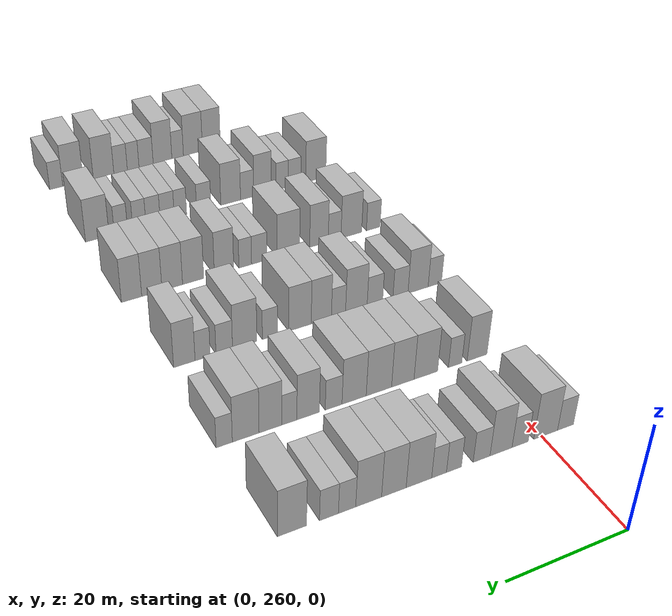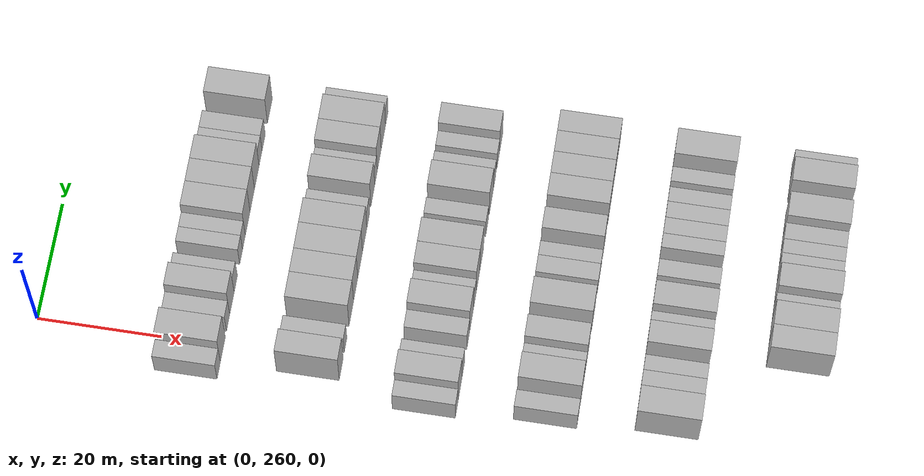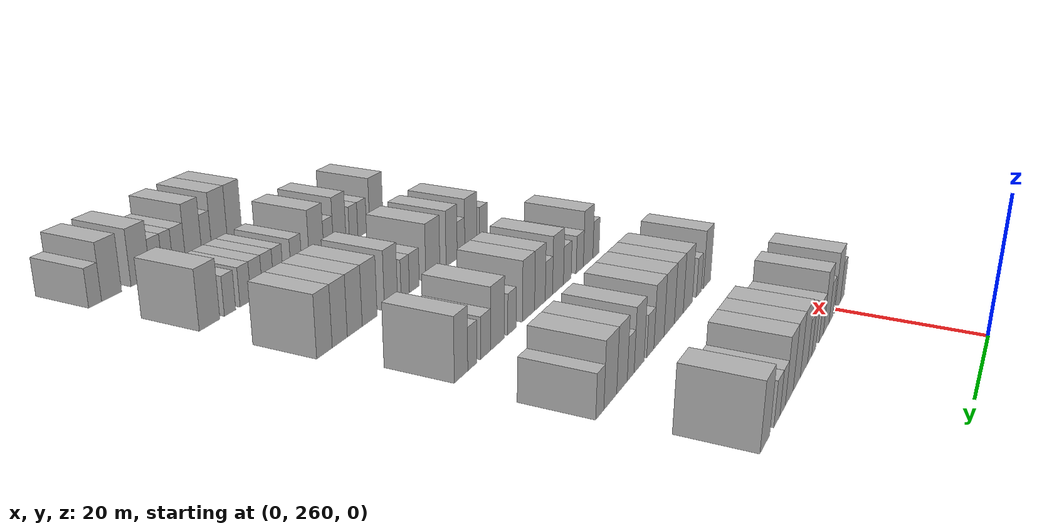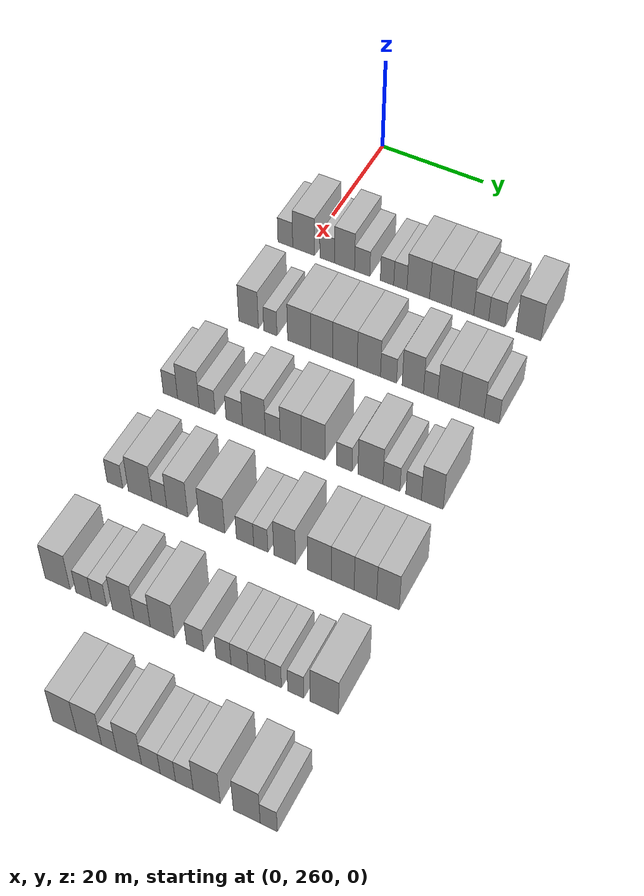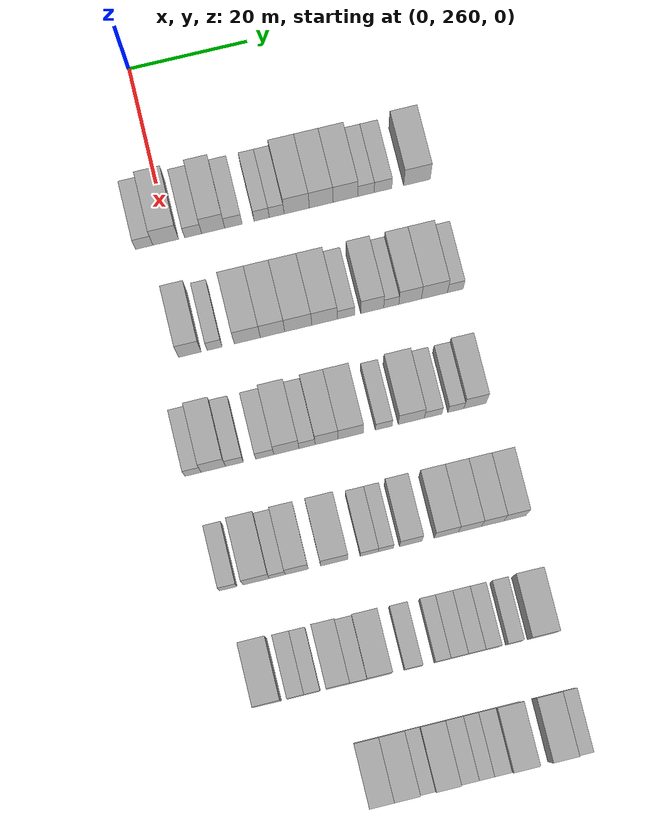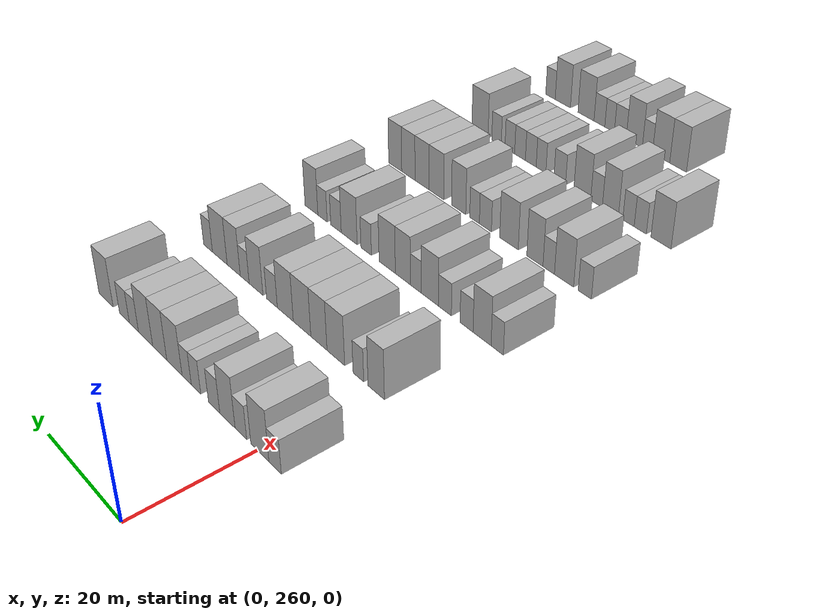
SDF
<sdf version="1.6">
 <world name="default">
  <model name="building_152">
   <static>1</static>
   <pose>25.0000 255.7451 0 0.000000 0.000000 0.000000</pose>
   <link name="link">
    <pose>0 0 3.00 0 0 0</pose>
    <collision name="collision"><geometry><box><size>10.0000 2.8878 6.0000</size></box></geometry></collision>
    <visual name="visual">
     <cast_shadows>0</cast_shadows>
     <geometry><box><size>10.0000 2.8878 6.0000</size></box></geometry>
     <material>
      <script>
       <uri>model://HANNAS_wall/materials/scripts</uri>
       <uri>model://HANNAS_wall/materials/textures</uri>
       <name>vrc/HANNAS_wall</name>
      </script>
     </material>
    </visual>
   </link>
  </model>
  <model name="building_153">
   <static>1</static>
   <pose>25.0000 259.3268 0 0.000000 0.000000 0.000000</pose>
   <link name="link">
    <pose>0 0 4.50 0 0 0</pose>
    <collision name="collision"><geometry><box><size>10.0000 4.2757 9.0000</size></box></geometry></collision>
    <visual name="visual">
     <cast_shadows>0</cast_shadows>
     <geometry><box><size>10.0000 4.2757 9.0000</size></box></geometry>
     <material>
      <script>
       <uri>model://HANNAS_wall/materials/scripts</uri>
       <uri>model://HANNAS_wall/materials/textures</uri>
       <name>vrc/HANNAS_wall</name>
      </script>
     </material>
    </visual>
   </link>
  </model>
  <model name="building_154">
   <static>1</static>
   <pose>25.0000 263.8897 0 0.000000 0.000000 0.000000</pose>
   <link name="link">
    <pose>0 0 3.00 0 0 0</pose>
    <collision name="collision"><geometry><box><size>10.0000 2.8500 6.0000</size></box></geometry></collision>
    <visual name="visual">
     <cast_shadows>0</cast_shadows>
     <geometry><box><size>10.0000 2.8500 6.0000</size></box></geometry>
     <material>
      <script>
       <uri>model://HANNAS_wall/materials/scripts</uri>
       <uri>model://HANNAS_wall/materials/textures</uri>
       <name>vrc/HANNAS_wall</name>
      </script>
     </material>
    </visual>
   </link>
  </model>
  <model name="building_155">
   <static>1</static>
   <pose>25.0000 267.2361 0 0.000000 0.000000 0.000000</pose>
   <link name="link">
    <pose>0 0 4.50 0 0 0</pose>
    <collision name="collision"><geometry><box><size>10.0000 3.8429 9.0000</size></box></geometry></collision>
    <visual name="visual">
     <cast_shadows>0</cast_shadows>
     <geometry><box><size>10.0000 3.8429 9.0000</size></box></geometry>
     <material>
      <script>
       <uri>model://HANNAS_wall/materials/scripts</uri>
       <uri>model://HANNAS_wall/materials/textures</uri>
       <name>vrc/HANNAS_wall</name>
      </script>
     </material>
    </visual>
   </link>
  </model>
  <model name="building_156">
   <static>1</static>
   <pose>25.0000 270.6099 0 0.000000 0.000000 0.000000</pose>
   <link name="link">
    <pose>0 0 3.00 0 0 0</pose>
    <collision name="collision"><geometry><box><size>10.0000 2.9047 6.0000</size></box></geometry></collision>
    <visual name="visual">
     <cast_shadows>0</cast_shadows>
     <geometry><box><size>10.0000 2.9047 6.0000</size></box></geometry>
     <material>
      <script>
       <uri>model://HANNAS_wall/materials/scripts</uri>
       <uri>model://HANNAS_wall/materials/textures</uri>
       <name>vrc/HANNAS_wall</name>
      </script>
     </material>
    </visual>
   </link>
  </model>
  <model name="building_157">
   <static>1</static>
   <pose>25.0000 275.3242 0 0.000000 0.000000 0.000000</pose>
   <link name="link">
    <pose>0 0 3.00 0 0 0</pose>
    <collision name="collision"><geometry><box><size>10.0000 2.5238 6.0000</size></box></geometry></collision>
    <visual name="visual">
     <cast_shadows>0</cast_shadows>
     <geometry><box><size>10.0000 2.5238 6.0000</size></box></geometry>
     <material>
      <script>
       <uri>model://HANNAS_wall/materials/scripts</uri>
       <uri>model://HANNAS_wall/materials/textures</uri>
       <name>vrc/HANNAS_wall</name>
      </script>
     </material>
    </visual>
   </link>
  </model>
  <model name="building_158">
   <static>1</static>
   <pose>25.0000 277.8251 0 0.000000 0.000000 0.000000</pose>
   <link name="link">
    <pose>0 0 3.00 0 0 0</pose>
    <collision name="collision"><geometry><box><size>10.0000 2.4781 6.0000</size></box></geometry></collision>
    <visual name="visual">
     <cast_shadows>0</cast_shadows>
     <geometry><box><size>10.0000 2.4781 6.0000</size></box></geometry>
     <material>
      <script>
       <uri>model://HANNAS_wall/materials/scripts</uri>
       <uri>model://HANNAS_wall/materials/textures</uri>
       <name>vrc/HANNAS_wall</name>
      </script>
     </material>
    </visual>
   </link>
  </model>
  <model name="building_159">
   <static>1</static>
   <pose>25.0000 281.1731 0 0.000000 0.000000 0.000000</pose>
   <link name="link">
    <pose>0 0 4.50 0 0 0</pose>
    <collision name="collision"><geometry><box><size>10.0000 4.2178 9.0000</size></box></geometry></collision>
    <visual name="visual">
     <cast_shadows>0</cast_shadows>
     <geometry><box><size>10.0000 4.2178 9.0000</size></box></geometry>
     <material>
      <script>
       <uri>model://HANNAS_wall/materials/scripts</uri>
       <uri>model://HANNAS_wall/materials/textures</uri>
       <name>vrc/HANNAS_wall</name>
      </script>
     </material>
    </visual>
   </link>
  </model>
  <model name="building_160">
   <static>1</static>
   <pose>25.0000 285.2769 0 0.000000 0.000000 0.000000</pose>
   <link name="link">
    <pose>0 0 4.50 0 0 0</pose>
    <collision name="collision"><geometry><box><size>10.0000 3.9897 9.0000</size></box></geometry></collision>
    <visual name="visual">
     <cast_shadows>0</cast_shadows>
     <geometry><box><size>10.0000 3.9897 9.0000</size></box></geometry>
     <material>
      <script>
       <uri>model://HANNAS_wall/materials/scripts</uri>
       <uri>model://HANNAS_wall/materials/textures</uri>
       <name>vrc/HANNAS_wall</name>
      </script>
     </material>
    </visual>
   </link>
  </model>
  <model name="building_161">
   <static>1</static>
   <pose>25.0000 289.3424 0 0.000000 0.000000 0.000000</pose>
   <link name="link">
    <pose>0 0 4.50 0 0 0</pose>
    <collision name="collision"><geometry><box><size>10.0000 4.1413 9.0000</size></box></geometry></collision>
    <visual name="visual">
     <cast_shadows>0</cast_shadows>
     <geometry><box><size>10.0000 4.1413 9.0000</size></box></geometry>
     <material>
      <script>
       <uri>model://HANNAS_wall/materials/scripts</uri>
       <uri>model://HANNAS_wall/materials/textures</uri>
       <name>vrc/HANNAS_wall</name>
      </script>
     </material>
    </visual>
   </link>
  </model>
  <model name="building_162">
   <static>1</static>
   <pose>25.0000 292.7761 0 0.000000 0.000000 0.000000</pose>
   <link name="link">
    <pose>0 0 3.00 0 0 0</pose>
    <collision name="collision"><geometry><box><size>10.0000 2.7262 6.0000</size></box></geometry></collision>
    <visual name="visual">
     <cast_shadows>0</cast_shadows>
     <geometry><box><size>10.0000 2.7262 6.0000</size></box></geometry>
     <material>
      <script>
       <uri>model://HANNAS_wall/materials/scripts</uri>
       <uri>model://HANNAS_wall/materials/textures</uri>
       <name>vrc/HANNAS_wall</name>
      </script>
     </material>
    </visual>
   </link>
  </model>
  <model name="building_163">
   <static>1</static>
   <pose>25.0000 295.6157 0 0.000000 0.000000 0.000000</pose>
   <link name="link">
    <pose>0 0 3.00 0 0 0</pose>
    <collision name="collision"><geometry><box><size>10.0000 2.9530 6.0000</size></box></geometry></collision>
    <visual name="visual">
     <cast_shadows>0</cast_shadows>
     <geometry><box><size>10.0000 2.9530 6.0000</size></box></geometry>
     <material>
      <script>
       <uri>model://HANNAS_wall/materials/scripts</uri>
       <uri>model://HANNAS_wall/materials/textures</uri>
       <name>vrc/HANNAS_wall</name>
      </script>
     </material>
    </visual>
   </link>
  </model>
  <model name="building_164">
   <static>1</static>
   <pose>25.0000 301.3169 0 0.000000 0.000000 0.000000</pose>
   <link name="link">
    <pose>0 0 4.50 0 0 0</pose>
    <collision name="collision"><geometry><box><size>10.0000 4.4494 9.0000</size></box></geometry></collision>
    <visual name="visual">
     <cast_shadows>0</cast_shadows>
     <geometry><box><size>10.0000 4.4494 9.0000</size></box></geometry>
     <material>
      <script>
       <uri>model://HANNAS_wall/materials/scripts</uri>
       <uri>model://HANNAS_wall/materials/textures</uri>
       <name>vrc/HANNAS_wall</name>
      </script>
     </material>
    </visual>
   </link>
  </model>
  <model name="building_318">
   <static>1</static>
   <pose>44.0000 258.9433 0 0.000000 0.000000 0.000000</pose>
   <link name="link">
    <pose>0 0 4.50 0 0 0</pose>
    <collision name="collision"><geometry><box><size>10.0000 3.7302 9.0000</size></box></geometry></collision>
    <visual name="visual">
     <cast_shadows>0</cast_shadows>
     <geometry><box><size>10.0000 3.7302 9.0000</size></box></geometry>
     <material>
      <script>
       <uri>model://HANNAS_wall/materials/scripts</uri>
       <uri>model://HANNAS_wall/materials/textures</uri>
       <name>vrc/HANNAS_wall</name>
      </script>
     </material>
    </visual>
   </link>
  </model>
  <model name="building_319">
   <static>1</static>
   <pose>44.0000 263.0475 0 0.000000 0.000000 0.000000</pose>
   <link name="link">
    <pose>0 0 3.00 0 0 0</pose>
    <collision name="collision"><geometry><box><size>10.0000 2.4783 6.0000</size></box></geometry></collision>
    <visual name="visual">
     <cast_shadows>0</cast_shadows>
     <geometry><box><size>10.0000 2.4783 6.0000</size></box></geometry>
     <material>
      <script>
       <uri>model://HANNAS_wall/materials/scripts</uri>
       <uri>model://HANNAS_wall/materials/textures</uri>
       <name>vrc/HANNAS_wall</name>
      </script>
     </material>
    </visual>
   </link>
  </model>
  <model name="building_320">
   <static>1</static>
   <pose>44.0000 268.4353 0 0.000000 0.000000 0.000000</pose>
   <link name="link">
    <pose>0 0 4.50 0 0 0</pose>
    <collision name="collision"><geometry><box><size>10.0000 4.2972 9.0000</size></box></geometry></collision>
    <visual name="visual">
     <cast_shadows>0</cast_shadows>
     <geometry><box><size>10.0000 4.2972 9.0000</size></box></geometry>
     <material>
      <script>
       <uri>model://HANNAS_wall/materials/scripts</uri>
       <uri>model://HANNAS_wall/materials/textures</uri>
       <name>vrc/HANNAS_wall</name>
      </script>
     </material>
    </visual>
   </link>
  </model>
  <model name="building_321">
   <static>1</static>
   <pose>44.0000 272.5977 0 0.000000 0.000000 0.000000</pose>
   <link name="link">
    <pose>0 0 4.50 0 0 0</pose>
    <collision name="collision"><geometry><box><size>10.0000 4.0278 9.0000</size></box></geometry></collision>
    <visual name="visual">
     <cast_shadows>0</cast_shadows>
     <geometry><box><size>10.0000 4.0278 9.0000</size></box></geometry>
     <material>
      <script>
       <uri>model://HANNAS_wall/materials/scripts</uri>
       <uri>model://HANNAS_wall/materials/textures</uri>
       <name>vrc/HANNAS_wall</name>
      </script>
     </material>
    </visual>
   </link>
  </model>
  <model name="building_322">
   <static>1</static>
   <pose>44.0000 276.8564 0 0.000000 0.000000 0.000000</pose>
   <link name="link">
    <pose>0 0 4.50 0 0 0</pose>
    <collision name="collision"><geometry><box><size>10.0000 4.4895 9.0000</size></box></geometry></collision>
    <visual name="visual">
     <cast_shadows>0</cast_shadows>
     <geometry><box><size>10.0000 4.4895 9.0000</size></box></geometry>
     <material>
      <script>
       <uri>model://HANNAS_wall/materials/scripts</uri>
       <uri>model://HANNAS_wall/materials/textures</uri>
       <name>vrc/HANNAS_wall</name>
      </script>
     </material>
    </visual>
   </link>
  </model>
  <model name="building_323">
   <static>1</static>
   <pose>44.0000 281.2097 0 0.000000 0.000000 0.000000</pose>
   <link name="link">
    <pose>0 0 4.50 0 0 0</pose>
    <collision name="collision"><geometry><box><size>10.0000 4.2170 9.0000</size></box></geometry></collision>
    <visual name="visual">
     <cast_shadows>0</cast_shadows>
     <geometry><box><size>10.0000 4.2170 9.0000</size></box></geometry>
     <material>
      <script>
       <uri>model://HANNAS_wall/materials/scripts</uri>
       <uri>model://HANNAS_wall/materials/textures</uri>
       <name>vrc/HANNAS_wall</name>
      </script>
     </material>
    </visual>
   </link>
  </model>
  <model name="building_324">
   <static>1</static>
   <pose>44.0000 284.7604 0 0.000000 0.000000 0.000000</pose>
   <link name="link">
    <pose>0 0 3.00 0 0 0</pose>
    <collision name="collision"><geometry><box><size>10.0000 2.8845 6.0000</size></box></geometry></collision>
    <visual name="visual">
     <cast_shadows>0</cast_shadows>
     <geometry><box><size>10.0000 2.8845 6.0000</size></box></geometry>
     <material>
      <script>
       <uri>model://HANNAS_wall/materials/scripts</uri>
       <uri>model://HANNAS_wall/materials/textures</uri>
       <name>vrc/HANNAS_wall</name>
      </script>
     </material>
    </visual>
   </link>
  </model>
  <model name="building_325">
   <static>1</static>
   <pose>44.0000 289.1081 0 0.000000 0.000000 0.000000</pose>
   <link name="link">
    <pose>0 0 4.50 0 0 0</pose>
    <collision name="collision"><geometry><box><size>10.0000 3.8110 9.0000</size></box></geometry></collision>
    <visual name="visual">
     <cast_shadows>0</cast_shadows>
     <geometry><box><size>10.0000 3.8110 9.0000</size></box></geometry>
     <material>
      <script>
       <uri>model://HANNAS_wall/materials/scripts</uri>
       <uri>model://HANNAS_wall/materials/textures</uri>
       <name>vrc/HANNAS_wall</name>
      </script>
     </material>
    </visual>
   </link>
  </model>
  <model name="building_326">
   <static>1</static>
   <pose>44.0000 292.2717 0 0.000000 0.000000 0.000000</pose>
   <link name="link">
    <pose>0 0 3.00 0 0 0</pose>
    <collision name="collision"><geometry><box><size>10.0000 2.5161 6.0000</size></box></geometry></collision>
    <visual name="visual">
     <cast_shadows>0</cast_shadows>
     <geometry><box><size>10.0000 2.5161 6.0000</size></box></geometry>
     <material>
      <script>
       <uri>model://HANNAS_wall/materials/scripts</uri>
       <uri>model://HANNAS_wall/materials/textures</uri>
       <name>vrc/HANNAS_wall</name>
      </script>
     </material>
    </visual>
   </link>
  </model>
  <model name="building_327">
   <static>1</static>
   <pose>44.0000 295.4068 0 0.000000 0.000000 0.000000</pose>
   <link name="link">
    <pose>0 0 4.50 0 0 0</pose>
    <collision name="collision"><geometry><box><size>10.0000 3.7540 9.0000</size></box></geometry></collision>
    <visual name="visual">
     <cast_shadows>0</cast_shadows>
     <geometry><box><size>10.0000 3.7540 9.0000</size></box></geometry>
     <material>
      <script>
       <uri>model://HANNAS_wall/materials/scripts</uri>
       <uri>model://HANNAS_wall/materials/textures</uri>
       <name>vrc/HANNAS_wall</name>
      </script>
     </material>
    </visual>
   </link>
  </model>
  <model name="building_328">
   <static>1</static>
   <pose>44.0000 299.4549 0 0.000000 0.000000 0.000000</pose>
   <link name="link">
    <pose>0 0 4.50 0 0 0</pose>
    <collision name="collision"><geometry><box><size>10.0000 4.3423 9.0000</size></box></geometry></collision>
    <visual name="visual">
     <cast_shadows>0</cast_shadows>
     <geometry><box><size>10.0000 4.3423 9.0000</size></box></geometry>
     <material>
      <script>
       <uri>model://HANNAS_wall/materials/scripts</uri>
       <uri>model://HANNAS_wall/materials/textures</uri>
       <name>vrc/HANNAS_wall</name>
      </script>
     </material>
    </visual>
   </link>
  </model>
  <model name="building_329">
   <static>1</static>
   <pose>44.0000 302.9361 0 0.000000 0.000000 0.000000</pose>
   <link name="link">
    <pose>0 0 3.00 0 0 0</pose>
    <collision name="collision"><geometry><box><size>10.0000 2.6201 6.0000</size></box></geometry></collision>
    <visual name="visual">
     <cast_shadows>0</cast_shadows>
     <geometry><box><size>10.0000 2.6201 6.0000</size></box></geometry>
     <material>
      <script>
       <uri>model://HANNAS_wall/materials/scripts</uri>
       <uri>model://HANNAS_wall/materials/textures</uri>
       <name>vrc/HANNAS_wall</name>
      </script>
     </material>
    </visual>
   </link>
  </model>
  <model name="building_484">
   <static>1</static>
   <pose>63.0000 255.0630 0 0.000000 0.000000 0.000000</pose>
   <link name="link">
    <pose>0 0 3.00 0 0 0</pose>
    <collision name="collision"><geometry><box><size>10.0000 2.6639 6.0000</size></box></geometry></collision>
    <visual name="visual">
     <cast_shadows>0</cast_shadows>
     <geometry><box><size>10.0000 2.6639 6.0000</size></box></geometry>
     <material>
      <script>
       <uri>model://HANNAS_wall/materials/scripts</uri>
       <uri>model://HANNAS_wall/materials/textures</uri>
       <name>vrc/HANNAS_wall</name>
      </script>
     </material>
    </visual>
   </link>
  </model>
  <model name="building_485">
   <static>1</static>
   <pose>63.0000 258.3875 0 0.000000 0.000000 0.000000</pose>
   <link name="link">
    <pose>0 0 4.50 0 0 0</pose>
    <collision name="collision"><geometry><box><size>10.0000 3.9850 9.0000</size></box></geometry></collision>
    <visual name="visual">
     <cast_shadows>0</cast_shadows>
     <geometry><box><size>10.0000 3.9850 9.0000</size></box></geometry>
     <material>
      <script>
       <uri>model://HANNAS_wall/materials/scripts</uri>
       <uri>model://HANNAS_wall/materials/textures</uri>
       <name>vrc/HANNAS_wall</name>
      </script>
     </material>
    </visual>
   </link>
  </model>
  <model name="building_486">
   <static>1</static>
   <pose>63.0000 261.8456 0 0.000000 0.000000 0.000000</pose>
   <link name="link">
    <pose>0 0 3.00 0 0 0</pose>
    <collision name="collision"><geometry><box><size>10.0000 2.9313 6.0000</size></box></geometry></collision>
    <visual name="visual">
     <cast_shadows>0</cast_shadows>
     <geometry><box><size>10.0000 2.9313 6.0000</size></box></geometry>
     <material>
      <script>
       <uri>model://HANNAS_wall/materials/scripts</uri>
       <uri>model://HANNAS_wall/materials/textures</uri>
       <name>vrc/HANNAS_wall</name>
      </script>
     </material>
    </visual>
   </link>
  </model>
  <model name="building_487">
   <static>1</static>
   <pose>63.0000 266.8086 0 0.000000 0.000000 0.000000</pose>
   <link name="link">
    <pose>0 0 3.00 0 0 0</pose>
    <collision name="collision"><geometry><box><size>10.0000 2.9948 6.0000</size></box></geometry></collision>
    <visual name="visual">
     <cast_shadows>0</cast_shadows>
     <geometry><box><size>10.0000 2.9948 6.0000</size></box></geometry>
     <material>
      <script>
       <uri>model://HANNAS_wall/materials/scripts</uri>
       <uri>model://HANNAS_wall/materials/textures</uri>
       <name>vrc/HANNAS_wall</name>
      </script>
     </material>
    </visual>
   </link>
  </model>
  <model name="building_488">
   <static>1</static>
   <pose>63.0000 270.3544 0 0.000000 0.000000 0.000000</pose>
   <link name="link">
    <pose>0 0 4.50 0 0 0</pose>
    <collision name="collision"><geometry><box><size>10.0000 4.0968 9.0000</size></box></geometry></collision>
    <visual name="visual">
     <cast_shadows>0</cast_shadows>
     <geometry><box><size>10.0000 4.0968 9.0000</size></box></geometry>
     <material>
      <script>
       <uri>model://HANNAS_wall/materials/scripts</uri>
       <uri>model://HANNAS_wall/materials/textures</uri>
       <name>vrc/HANNAS_wall</name>
      </script>
     </material>
    </visual>
   </link>
  </model>
  <model name="building_489">
   <static>1</static>
   <pose>63.0000 273.7307 0 0.000000 0.000000 0.000000</pose>
   <link name="link">
    <pose>0 0 3.00 0 0 0</pose>
    <collision name="collision"><geometry><box><size>10.0000 2.6557 6.0000</size></box></geometry></collision>
    <visual name="visual">
     <cast_shadows>0</cast_shadows>
     <geometry><box><size>10.0000 2.6557 6.0000</size></box></geometry>
     <material>
      <script>
       <uri>model://HANNAS_wall/materials/scripts</uri>
       <uri>model://HANNAS_wall/materials/textures</uri>
       <name>vrc/HANNAS_wall</name>
      </script>
     </material>
    </visual>
   </link>
  </model>
  <model name="building_490">
   <static>1</static>
   <pose>63.0000 276.9343 0 0.000000 0.000000 0.000000</pose>
   <link name="link">
    <pose>0 0 4.50 0 0 0</pose>
    <collision name="collision"><geometry><box><size>10.0000 3.7516 9.0000</size></box></geometry></collision>
    <visual name="visual">
     <cast_shadows>0</cast_shadows>
     <geometry><box><size>10.0000 3.7516 9.0000</size></box></geometry>
     <material>
      <script>
       <uri>model://HANNAS_wall/materials/scripts</uri>
       <uri>model://HANNAS_wall/materials/textures</uri>
       <name>vrc/HANNAS_wall</name>
      </script>
     </material>
    </visual>
   </link>
  </model>
  <model name="building_491">
   <static>1</static>
   <pose>63.0000 280.8736 0 0.000000 0.000000 0.000000</pose>
   <link name="link">
    <pose>0 0 4.50 0 0 0</pose>
    <collision name="collision"><geometry><box><size>10.0000 4.1269 9.0000</size></box></geometry></collision>
    <visual name="visual">
     <cast_shadows>0</cast_shadows>
     <geometry><box><size>10.0000 4.1269 9.0000</size></box></geometry>
     <material>
      <script>
       <uri>model://HANNAS_wall/materials/scripts</uri>
       <uri>model://HANNAS_wall/materials/textures</uri>
       <name>vrc/HANNAS_wall</name>
      </script>
     </material>
    </visual>
   </link>
  </model>
  <model name="building_492">
   <static>1</static>
   <pose>63.0000 286.3116 0 0.000000 0.000000 0.000000</pose>
   <link name="link">
    <pose>0 0 3.00 0 0 0</pose>
    <collision name="collision"><geometry><box><size>10.0000 2.7492 6.0000</size></box></geometry></collision>
    <visual name="visual">
     <cast_shadows>0</cast_shadows>
     <geometry><box><size>10.0000 2.7492 6.0000</size></box></geometry>
     <material>
      <script>
       <uri>model://HANNAS_wall/materials/scripts</uri>
       <uri>model://HANNAS_wall/materials/textures</uri>
       <name>vrc/HANNAS_wall</name>
      </script>
     </material>
    </visual>
   </link>
  </model>
  <model name="building_493">
   <static>1</static>
   <pose>63.0000 290.8353 0 0.000000 0.000000 0.000000</pose>
   <link name="link">
    <pose>0 0 4.50 0 0 0</pose>
    <collision name="collision"><geometry><box><size>10.0000 4.2982 9.0000</size></box></geometry></collision>
    <visual name="visual">
     <cast_shadows>0</cast_shadows>
     <geometry><box><size>10.0000 4.2982 9.0000</size></box></geometry>
     <material>
      <script>
       <uri>model://HANNAS_wall/materials/scripts</uri>
       <uri>model://HANNAS_wall/materials/textures</uri>
       <name>vrc/HANNAS_wall</name>
      </script>
     </material>
    </visual>
   </link>
  </model>
  <model name="building_494">
   <static>1</static>
   <pose>63.0000 294.4322 0 0.000000 0.000000 0.000000</pose>
   <link name="link">
    <pose>0 0 3.00 0 0 0</pose>
    <collision name="collision"><geometry><box><size>10.0000 2.8955 6.0000</size></box></geometry></collision>
    <visual name="visual">
     <cast_shadows>0</cast_shadows>
     <geometry><box><size>10.0000 2.8955 6.0000</size></box></geometry>
     <material>
      <script>
       <uri>model://HANNAS_wall/materials/scripts</uri>
       <uri>model://HANNAS_wall/materials/textures</uri>
       <name>vrc/HANNAS_wall</name>
      </script>
     </material>
    </visual>
   </link>
  </model>
  <model name="building_495">
   <static>1</static>
   <pose>63.0000 298.1858 0 0.000000 0.000000 0.000000</pose>
   <link name="link">
    <pose>0 0 3.00 0 0 0</pose>
    <collision name="collision"><geometry><box><size>10.0000 2.6119 6.0000</size></box></geometry></collision>
    <visual name="visual">
     <cast_shadows>0</cast_shadows>
     <geometry><box><size>10.0000 2.6119 6.0000</size></box></geometry>
     <material>
      <script>
       <uri>model://HANNAS_wall/materials/scripts</uri>
       <uri>model://HANNAS_wall/materials/textures</uri>
       <name>vrc/HANNAS_wall</name>
      </script>
     </material>
    </visual>
   </link>
  </model>
  <model name="building_496">
   <static>1</static>
   <pose>63.0000 301.3252 0 0.000000 0.000000 0.000000</pose>
   <link name="link">
    <pose>0 0 4.50 0 0 0</pose>
    <collision name="collision"><geometry><box><size>10.0000 3.6667 9.0000</size></box></geometry></collision>
    <visual name="visual">
     <cast_shadows>0</cast_shadows>
     <geometry><box><size>10.0000 3.6667 9.0000</size></box></geometry>
     <material>
      <script>
       <uri>model://HANNAS_wall/materials/scripts</uri>
       <uri>model://HANNAS_wall/materials/textures</uri>
       <name>vrc/HANNAS_wall</name>
      </script>
     </material>
    </visual>
   </link>
  </model>
  <model name="building_652">
   <static>1</static>
   <pose>82.0000 256.3721 0 0.000000 0.000000 0.000000</pose>
   <link name="link">
    <pose>0 0 3.00 0 0 0</pose>
    <collision name="collision"><geometry><box><size>10.0000 2.8302 6.0000</size></box></geometry></collision>
    <visual name="visual">
     <cast_shadows>0</cast_shadows>
     <geometry><box><size>10.0000 2.8302 6.0000</size></box></geometry>
     <material>
      <script>
       <uri>model://HANNAS_wall/materials/scripts</uri>
       <uri>model://HANNAS_wall/materials/textures</uri>
       <name>vrc/HANNAS_wall</name>
      </script>
     </material>
    </visual>
   </link>
  </model>
  <model name="building_653">
   <static>1</static>
   <pose>82.0000 260.9050 0 0.000000 0.000000 0.000000</pose>
   <link name="link">
    <pose>0 0 4.50 0 0 0</pose>
    <collision name="collision"><geometry><box><size>10.0000 4.2356 9.0000</size></box></geometry></collision>
    <visual name="visual">
     <cast_shadows>0</cast_shadows>
     <geometry><box><size>10.0000 4.2356 9.0000</size></box></geometry>
     <material>
      <script>
       <uri>model://HANNAS_wall/materials/scripts</uri>
       <uri>model://HANNAS_wall/materials/textures</uri>
       <name>vrc/HANNAS_wall</name>
      </script>
     </material>
    </visual>
   </link>
  </model>
  <model name="building_654">
   <static>1</static>
   <pose>82.0000 264.3204 0 0.000000 0.000000 0.000000</pose>
   <link name="link">
    <pose>0 0 3.00 0 0 0</pose>
    <collision name="collision"><geometry><box><size>10.0000 2.5952 6.0000</size></box></geometry></collision>
    <visual name="visual">
     <cast_shadows>0</cast_shadows>
     <geometry><box><size>10.0000 2.5952 6.0000</size></box></geometry>
     <material>
      <script>
       <uri>model://HANNAS_wall/materials/scripts</uri>
       <uri>model://HANNAS_wall/materials/textures</uri>
       <name>vrc/HANNAS_wall</name>
      </script>
     </material>
    </visual>
   </link>
  </model>
  <model name="building_655">
   <static>1</static>
   <pose>82.0000 267.4763 0 0.000000 0.000000 0.000000</pose>
   <link name="link">
    <pose>0 0 4.50 0 0 0</pose>
    <collision name="collision"><geometry><box><size>10.0000 3.7165 9.0000</size></box></geometry></collision>
    <visual name="visual">
     <cast_shadows>0</cast_shadows>
     <geometry><box><size>10.0000 3.7165 9.0000</size></box></geometry>
     <material>
      <script>
       <uri>model://HANNAS_wall/materials/scripts</uri>
       <uri>model://HANNAS_wall/materials/textures</uri>
       <name>vrc/HANNAS_wall</name>
      </script>
     </material>
    </visual>
   </link>
  </model>
  <model name="building_656">
   <static>1</static>
   <pose>82.0000 273.5510 0 0.000000 0.000000 0.000000</pose>
   <link name="link">
    <pose>0 0 4.50 0 0 0</pose>
    <collision name="collision"><geometry><box><size>10.0000 4.4329 9.0000</size></box></geometry></collision>
    <visual name="visual">
     <cast_shadows>0</cast_shadows>
     <geometry><box><size>10.0000 4.4329 9.0000</size></box></geometry>
     <material>
      <script>
       <uri>model://HANNAS_wall/materials/scripts</uri>
       <uri>model://HANNAS_wall/materials/textures</uri>
       <name>vrc/HANNAS_wall</name>
      </script>
     </material>
    </visual>
   </link>
  </model>
  <model name="building_657">
   <static>1</static>
   <pose>82.0000 279.2482 0 0.000000 0.000000 0.000000</pose>
   <link name="link">
    <pose>0 0 3.00 0 0 0</pose>
    <collision name="collision"><geometry><box><size>10.0000 2.9615 6.0000</size></box></geometry></collision>
    <visual name="visual">
     <cast_shadows>0</cast_shadows>
     <geometry><box><size>10.0000 2.9615 6.0000</size></box></geometry>
     <material>
      <script>
       <uri>model://HANNAS_wall/materials/scripts</uri>
       <uri>model://HANNAS_wall/materials/textures</uri>
       <name>vrc/HANNAS_wall</name>
      </script>
     </material>
    </visual>
   </link>
  </model>
  <model name="building_658">
   <static>1</static>
   <pose>82.0000 281.9366 0 0.000000 0.000000 0.000000</pose>
   <link name="link">
    <pose>0 0 3.00 0 0 0</pose>
    <collision name="collision"><geometry><box><size>10.0000 2.4153 6.0000</size></box></geometry></collision>
    <visual name="visual">
     <cast_shadows>0</cast_shadows>
     <geometry><box><size>10.0000 2.4153 6.0000</size></box></geometry>
     <material>
      <script>
       <uri>model://HANNAS_wall/materials/scripts</uri>
       <uri>model://HANNAS_wall/materials/textures</uri>
       <name>vrc/HANNAS_wall</name>
      </script>
     </material>
    </visual>
   </link>
  </model>
  <model name="building_659">
   <static>1</static>
   <pose>82.0000 285.9745 0 0.000000 0.000000 0.000000</pose>
   <link name="link">
    <pose>0 0 4.50 0 0 0</pose>
    <collision name="collision"><geometry><box><size>10.0000 3.6605 9.0000</size></box></geometry></collision>
    <visual name="visual">
     <cast_shadows>0</cast_shadows>
     <geometry><box><size>10.0000 3.6605 9.0000</size></box></geometry>
     <material>
      <script>
       <uri>model://HANNAS_wall/materials/scripts</uri>
       <uri>model://HANNAS_wall/materials/textures</uri>
       <name>vrc/HANNAS_wall</name>
      </script>
     </material>
    </visual>
   </link>
  </model>
  <model name="building_660">
   <static>1</static>
   <pose>82.0000 291.7693 0 0.000000 0.000000 0.000000</pose>
   <link name="link">
    <pose>0 0 4.50 0 0 0</pose>
    <collision name="collision"><geometry><box><size>10.0000 3.9292 9.0000</size></box></geometry></collision>
    <visual name="visual">
     <cast_shadows>0</cast_shadows>
     <geometry><box><size>10.0000 3.9292 9.0000</size></box></geometry>
     <material>
      <script>
       <uri>model://HANNAS_wall/materials/scripts</uri>
       <uri>model://HANNAS_wall/materials/textures</uri>
       <name>vrc/HANNAS_wall</name>
      </script>
     </material>
    </visual>
   </link>
  </model>
  <model name="building_661">
   <static>1</static>
   <pose>82.0000 295.6200 0 0.000000 0.000000 0.000000</pose>
   <link name="link">
    <pose>0 0 4.50 0 0 0</pose>
    <collision name="collision"><geometry><box><size>10.0000 3.7721 9.0000</size></box></geometry></collision>
    <visual name="visual">
     <cast_shadows>0</cast_shadows>
     <geometry><box><size>10.0000 3.7721 9.0000</size></box></geometry>
     <material>
      <script>
       <uri>model://HANNAS_wall/materials/scripts</uri>
       <uri>model://HANNAS_wall/materials/textures</uri>
       <name>vrc/HANNAS_wall</name>
      </script>
     </material>
    </visual>
   </link>
  </model>
  <model name="building_662">
   <static>1</static>
   <pose>82.0000 299.3448 0 0.000000 0.000000 0.000000</pose>
   <link name="link">
    <pose>0 0 4.50 0 0 0</pose>
    <collision name="collision"><geometry><box><size>10.0000 3.6774 9.0000</size></box></geometry></collision>
    <visual name="visual">
     <cast_shadows>0</cast_shadows>
     <geometry><box><size>10.0000 3.6774 9.0000</size></box></geometry>
     <material>
      <script>
       <uri>model://HANNAS_wall/materials/scripts</uri>
       <uri>model://HANNAS_wall/materials/textures</uri>
       <name>vrc/HANNAS_wall</name>
      </script>
     </material>
    </visual>
   </link>
  </model>
  <model name="building_663">
   <static>1</static>
   <pose>82.0000 303.0088 0 0.000000 0.000000 0.000000</pose>
   <link name="link">
    <pose>0 0 4.50 0 0 0</pose>
    <collision name="collision"><geometry><box><size>10.0000 3.6505 9.0000</size></box></geometry></collision>
    <visual name="visual">
     <cast_shadows>0</cast_shadows>
     <geometry><box><size>10.0000 3.6505 9.0000</size></box></geometry>
     <material>
      <script>
       <uri>model://HANNAS_wall/materials/scripts</uri>
       <uri>model://HANNAS_wall/materials/textures</uri>
       <name>vrc/HANNAS_wall</name>
      </script>
     </material>
    </visual>
   </link>
  </model>
  <model name="building_828">
   <static>1</static>
   <pose>101.0000 258.2680 0 0.000000 0.000000 0.000000</pose>
   <link name="link">
    <pose>0 0 4.50 0 0 0</pose>
    <collision name="collision"><geometry><box><size>10.0000 4.3297 9.0000</size></box></geometry></collision>
    <visual name="visual">
     <cast_shadows>0</cast_shadows>
     <geometry><box><size>10.0000 4.3297 9.0000</size></box></geometry>
     <material>
      <script>
       <uri>model://HANNAS_wall/materials/scripts</uri>
       <uri>model://HANNAS_wall/materials/textures</uri>
       <name>vrc/HANNAS_wall</name>
      </script>
     </material>
    </visual>
   </link>
  </model>
  <model name="building_829">
   <static>1</static>
   <pose>101.0000 262.7826 0 0.000000 0.000000 0.000000</pose>
   <link name="link">
    <pose>0 0 3.00 0 0 0</pose>
    <collision name="collision"><geometry><box><size>10.0000 2.6995 6.0000</size></box></geometry></collision>
    <visual name="visual">
     <cast_shadows>0</cast_shadows>
     <geometry><box><size>10.0000 2.6995 6.0000</size></box></geometry>
     <material>
      <script>
       <uri>model://HANNAS_wall/materials/scripts</uri>
       <uri>model://HANNAS_wall/materials/textures</uri>
       <name>vrc/HANNAS_wall</name>
      </script>
     </material>
    </visual>
   </link>
  </model>
  <model name="building_830">
   <static>1</static>
   <pose>101.0000 265.4132 0 0.000000 0.000000 0.000000</pose>
   <link name="link">
    <pose>0 0 3.00 0 0 0</pose>
    <collision name="collision"><geometry><box><size>10.0000 2.5617 6.0000</size></box></geometry></collision>
    <visual name="visual">
     <cast_shadows>0</cast_shadows>
     <geometry><box><size>10.0000 2.5617 6.0000</size></box></geometry>
     <material>
      <script>
       <uri>model://HANNAS_wall/materials/scripts</uri>
       <uri>model://HANNAS_wall/materials/textures</uri>
       <name>vrc/HANNAS_wall</name>
      </script>
     </material>
    </visual>
   </link>
  </model>
  <model name="building_831">
   <static>1</static>
   <pose>101.0000 269.5409 0 0.000000 0.000000 0.000000</pose>
   <link name="link">
    <pose>0 0 4.50 0 0 0</pose>
    <collision name="collision"><geometry><box><size>10.0000 3.6938 9.0000</size></box></geometry></collision>
    <visual name="visual">
     <cast_shadows>0</cast_shadows>
     <geometry><box><size>10.0000 3.6938 9.0000</size></box></geometry>
     <material>
      <script>
       <uri>model://HANNAS_wall/materials/scripts</uri>
       <uri>model://HANNAS_wall/materials/textures</uri>
       <name>vrc/HANNAS_wall</name>
      </script>
     </material>
    </visual>
   </link>
  </model>
  <model name="building_832">
   <static>1</static>
   <pose>101.0000 272.7527 0 0.000000 0.000000 0.000000</pose>
   <link name="link">
    <pose>0 0 3.00 0 0 0</pose>
    <collision name="collision"><geometry><box><size>10.0000 2.7297 6.0000</size></box></geometry></collision>
    <visual name="visual">
     <cast_shadows>0</cast_shadows>
     <geometry><box><size>10.0000 2.7297 6.0000</size></box></geometry>
     <material>
      <script>
       <uri>model://HANNAS_wall/materials/scripts</uri>
       <uri>model://HANNAS_wall/materials/textures</uri>
       <name>vrc/HANNAS_wall</name>
      </script>
     </material>
    </visual>
   </link>
  </model>
  <model name="building_833">
   <static>1</static>
   <pose>101.0000 276.1327 0 0.000000 0.000000 0.000000</pose>
   <link name="link">
    <pose>0 0 4.50 0 0 0</pose>
    <collision name="collision"><geometry><box><size>10.0000 4.0304 9.0000</size></box></geometry></collision>
    <visual name="visual">
     <cast_shadows>0</cast_shadows>
     <geometry><box><size>10.0000 4.0304 9.0000</size></box></geometry>
     <material>
      <script>
       <uri>model://HANNAS_wall/materials/scripts</uri>
       <uri>model://HANNAS_wall/materials/textures</uri>
       <name>vrc/HANNAS_wall</name>
      </script>
     </material>
    </visual>
   </link>
  </model>
  <model name="building_834">
   <static>1</static>
   <pose>101.0000 281.5826 0 0.000000 0.000000 0.000000</pose>
   <link name="link">
    <pose>0 0 3.00 0 0 0</pose>
    <collision name="collision"><geometry><box><size>10.0000 2.8695 6.0000</size></box></geometry></collision>
    <visual name="visual">
     <cast_shadows>0</cast_shadows>
     <geometry><box><size>10.0000 2.8695 6.0000</size></box></geometry>
     <material>
      <script>
       <uri>model://HANNAS_wall/materials/scripts</uri>
       <uri>model://HANNAS_wall/materials/textures</uri>
       <name>vrc/HANNAS_wall</name>
      </script>
     </material>
    </visual>
   </link>
  </model>
  <model name="building_835">
   <static>1</static>
   <pose>101.0000 286.2436 0 0.000000 0.000000 0.000000</pose>
   <link name="link">
    <pose>0 0 3.00 0 0 0</pose>
    <collision name="collision"><geometry><box><size>10.0000 2.4524 6.0000</size></box></geometry></collision>
    <visual name="visual">
     <cast_shadows>0</cast_shadows>
     <geometry><box><size>10.0000 2.4524 6.0000</size></box></geometry>
     <material>
      <script>
       <uri>model://HANNAS_wall/materials/scripts</uri>
       <uri>model://HANNAS_wall/materials/textures</uri>
       <name>vrc/HANNAS_wall</name>
      </script>
     </material>
    </visual>
   </link>
  </model>
  <model name="building_836">
   <static>1</static>
   <pose>101.0000 288.8552 0 0.000000 0.000000 0.000000</pose>
   <link name="link">
    <pose>0 0 3.00 0 0 0</pose>
    <collision name="collision"><geometry><box><size>10.0000 2.7709 6.0000</size></box></geometry></collision>
    <visual name="visual">
     <cast_shadows>0</cast_shadows>
     <geometry><box><size>10.0000 2.7709 6.0000</size></box></geometry>
     <material>
      <script>
       <uri>model://HANNAS_wall/materials/scripts</uri>
       <uri>model://HANNAS_wall/materials/textures</uri>
       <name>vrc/HANNAS_wall</name>
      </script>
     </material>
    </visual>
   </link>
  </model>
  <model name="building_837">
   <static>1</static>
   <pose>101.0000 291.6362 0 0.000000 0.000000 0.000000</pose>
   <link name="link">
    <pose>0 0 3.00 0 0 0</pose>
    <collision name="collision"><geometry><box><size>10.0000 2.7911 6.0000</size></box></geometry></collision>
    <visual name="visual">
     <cast_shadows>0</cast_shadows>
     <geometry><box><size>10.0000 2.7911 6.0000</size></box></geometry>
     <material>
      <script>
       <uri>model://HANNAS_wall/materials/scripts</uri>
       <uri>model://HANNAS_wall/materials/textures</uri>
       <name>vrc/HANNAS_wall</name>
      </script>
     </material>
    </visual>
   </link>
  </model>
  <model name="building_838">
   <static>1</static>
   <pose>101.0000 294.3059 0 0.000000 0.000000 0.000000</pose>
   <link name="link">
    <pose>0 0 3.00 0 0 0</pose>
    <collision name="collision"><geometry><box><size>10.0000 2.5484 6.0000</size></box></geometry></collision>
    <visual name="visual">
     <cast_shadows>0</cast_shadows>
     <geometry><box><size>10.0000 2.5484 6.0000</size></box></geometry>
     <material>
      <script>
       <uri>model://HANNAS_wall/materials/scripts</uri>
       <uri>model://HANNAS_wall/materials/textures</uri>
       <name>vrc/HANNAS_wall</name>
      </script>
     </material>
    </visual>
   </link>
  </model>
  <model name="building_839">
   <static>1</static>
   <pose>101.0000 297.8516 0 0.000000 0.000000 0.000000</pose>
   <link name="link">
    <pose>0 0 3.00 0 0 0</pose>
    <collision name="collision"><geometry><box><size>10.0000 2.5429 6.0000</size></box></geometry></collision>
    <visual name="visual">
     <cast_shadows>0</cast_shadows>
     <geometry><box><size>10.0000 2.5429 6.0000</size></box></geometry>
     <material>
      <script>
       <uri>model://HANNAS_wall/materials/scripts</uri>
       <uri>model://HANNAS_wall/materials/textures</uri>
       <name>vrc/HANNAS_wall</name>
      </script>
     </material>
    </visual>
   </link>
  </model>
  <model name="building_840">
   <static>1</static>
   <pose>101.0000 302.3446 0 0.000000 0.000000 0.000000</pose>
   <link name="link">
    <pose>0 0 4.50 0 0 0</pose>
    <collision name="collision"><geometry><box><size>10.0000 4.4431 9.0000</size></box></geometry></collision>
    <visual name="visual">
     <cast_shadows>0</cast_shadows>
     <geometry><box><size>10.0000 4.4431 9.0000</size></box></geometry>
     <material>
      <script>
       <uri>model://HANNAS_wall/materials/scripts</uri>
       <uri>model://HANNAS_wall/materials/textures</uri>
       <name>vrc/HANNAS_wall</name>
      </script>
     </material>
    </visual>
   </link>
  </model>
  <model name="building_1004">
   <static>1</static>
   <pose>120.0000 271.7381 0 0.000000 0.000000 0.000000</pose>
   <link name="link">
    <pose>0 0 4.50 0 0 0</pose>
    <collision name="collision"><geometry><box><size>10.0000 3.8856 9.0000</size></box></geometry></collision>
    <visual name="visual">
     <cast_shadows>0</cast_shadows>
     <geometry><box><size>10.0000 3.8856 9.0000</size></box></geometry>
     <material>
      <script>
       <uri>model://HANNAS_wall/materials/scripts</uri>
       <uri>model://HANNAS_wall/materials/textures</uri>
       <name>vrc/HANNAS_wall</name>
      </script>
     </material>
    </visual>
   </link>
  </model>
  <model name="building_1005">
   <static>1</static>
   <pose>120.0000 275.7154 0 0.000000 0.000000 0.000000</pose>
   <link name="link">
    <pose>0 0 4.50 0 0 0</pose>
    <collision name="collision"><geometry><box><size>10.0000 4.0691 9.0000</size></box></geometry></collision>
    <visual name="visual">
     <cast_shadows>0</cast_shadows>
     <geometry><box><size>10.0000 4.0691 9.0000</size></box></geometry>
     <material>
      <script>
       <uri>model://HANNAS_wall/materials/scripts</uri>
       <uri>model://HANNAS_wall/materials/textures</uri>
       <name>vrc/HANNAS_wall</name>
      </script>
     </material>
    </visual>
   </link>
  </model>
  <model name="building_1006">
   <static>1</static>
   <pose>120.0000 278.9770 0 0.000000 0.000000 0.000000</pose>
   <link name="link">
    <pose>0 0 3.00 0 0 0</pose>
    <collision name="collision"><geometry><box><size>10.0000 2.4540 6.0000</size></box></geometry></collision>
    <visual name="visual">
     <cast_shadows>0</cast_shadows>
     <geometry><box><size>10.0000 2.4540 6.0000</size></box></geometry>
     <material>
      <script>
       <uri>model://HANNAS_wall/materials/scripts</uri>
       <uri>model://HANNAS_wall/materials/textures</uri>
       <name>vrc/HANNAS_wall</name>
      </script>
     </material>
    </visual>
   </link>
  </model>
  <model name="building_1007">
   <static>1</static>
   <pose>120.0000 282.1708 0 0.000000 0.000000 0.000000</pose>
   <link name="link">
    <pose>0 0 4.50 0 0 0</pose>
    <collision name="collision"><geometry><box><size>10.0000 3.9337 9.0000</size></box></geometry></collision>
    <visual name="visual">
     <cast_shadows>0</cast_shadows>
     <geometry><box><size>10.0000 3.9337 9.0000</size></box></geometry>
     <material>
      <script>
       <uri>model://HANNAS_wall/materials/scripts</uri>
       <uri>model://HANNAS_wall/materials/textures</uri>
       <name>vrc/HANNAS_wall</name>
      </script>
     </material>
    </visual>
   </link>
  </model>
  <model name="building_1008">
   <static>1</static>
   <pose>120.0000 285.6141 0 0.000000 0.000000 0.000000</pose>
   <link name="link">
    <pose>0 0 3.00 0 0 0</pose>
    <collision name="collision"><geometry><box><size>10.0000 2.9528 6.0000</size></box></geometry></collision>
    <visual name="visual">
     <cast_shadows>0</cast_shadows>
     <geometry><box><size>10.0000 2.9528 6.0000</size></box></geometry>
     <material>
      <script>
       <uri>model://HANNAS_wall/materials/scripts</uri>
       <uri>model://HANNAS_wall/materials/textures</uri>
       <name>vrc/HANNAS_wall</name>
      </script>
     </material>
    </visual>
   </link>
  </model>
  <model name="building_1009">
   <static>1</static>
   <pose>120.0000 288.2947 0 0.000000 0.000000 0.000000</pose>
   <link name="link">
    <pose>0 0 3.00 0 0 0</pose>
    <collision name="collision"><geometry><box><size>10.0000 2.4084 6.0000</size></box></geometry></collision>
    <visual name="visual">
     <cast_shadows>0</cast_shadows>
     <geometry><box><size>10.0000 2.4084 6.0000</size></box></geometry>
     <material>
      <script>
       <uri>model://HANNAS_wall/materials/scripts</uri>
       <uri>model://HANNAS_wall/materials/textures</uri>
       <name>vrc/HANNAS_wall</name>
      </script>
     </material>
    </visual>
   </link>
  </model>
  <model name="building_1010">
   <static>1</static>
   <pose>120.0000 290.8810 0 0.000000 0.000000 0.000000</pose>
   <link name="link">
    <pose>0 0 3.00 0 0 0</pose>
    <collision name="collision"><geometry><box><size>10.0000 2.7643 6.0000</size></box></geometry></collision>
    <visual name="visual">
     <cast_shadows>0</cast_shadows>
     <geometry><box><size>10.0000 2.7643 6.0000</size></box></geometry>
     <material>
      <script>
       <uri>model://HANNAS_wall/materials/scripts</uri>
       <uri>model://HANNAS_wall/materials/textures</uri>
       <name>vrc/HANNAS_wall</name>
      </script>
     </material>
    </visual>
   </link>
  </model>
  <model name="building_1011">
   <static>1</static>
   <pose>120.0000 294.3529 0 0.000000 0.000000 0.000000</pose>
   <link name="link">
    <pose>0 0 4.50 0 0 0</pose>
    <collision name="collision"><geometry><box><size>10.0000 4.1795 9.0000</size></box></geometry></collision>
    <visual name="visual">
     <cast_shadows>0</cast_shadows>
     <geometry><box><size>10.0000 4.1795 9.0000</size></box></geometry>
     <material>
      <script>
       <uri>model://HANNAS_wall/materials/scripts</uri>
       <uri>model://HANNAS_wall/materials/textures</uri>
       <name>vrc/HANNAS_wall</name>
      </script>
     </material>
    </visual>
   </link>
  </model>
  <model name="building_1012">
   <static>1</static>
   <pose>120.0000 300.4896 0 0.000000 0.000000 0.000000</pose>
   <link name="link">
    <pose>0 0 4.50 0 0 0</pose>
    <collision name="collision"><geometry><box><size>10.0000 4.0939 9.0000</size></box></geometry></collision>
    <visual name="visual">
     <cast_shadows>0</cast_shadows>
     <geometry><box><size>10.0000 4.0939 9.0000</size></box></geometry>
     <material>
      <script>
       <uri>model://HANNAS_wall/materials/scripts</uri>
       <uri>model://HANNAS_wall/materials/textures</uri>
       <name>vrc/HANNAS_wall</name>
      </script>
     </material>
    </visual>
   </link>
  </model>
  <model name="building_1013">
   <static>1</static>
   <pose>120.0000 303.8272 0 0.000000 0.000000 0.000000</pose>
   <link name="link">
    <pose>0 0 3.00 0 0 0</pose>
    <collision name="collision"><geometry><box><size>10.0000 2.5813 6.0000</size></box></geometry></collision>
    <visual name="visual">
     <cast_shadows>0</cast_shadows>
     <geometry><box><size>10.0000 2.5813 6.0000</size></box></geometry>
     <material>
      <script>
       <uri>model://HANNAS_wall/materials/scripts</uri>
       <uri>model://HANNAS_wall/materials/textures</uri>
       <name>vrc/HANNAS_wall</name>
      </script>
     </material>
    </visual>
   </link>
  </model>
 </world>
</sdf>
